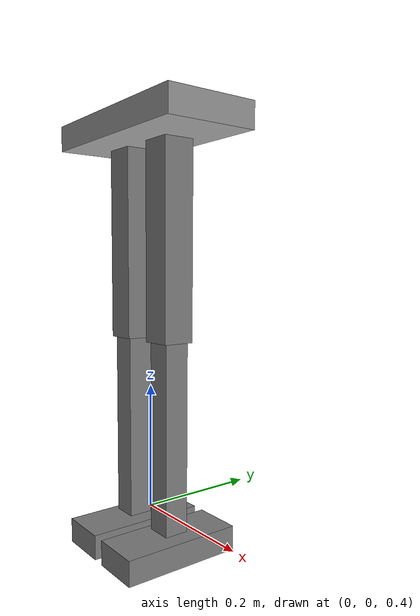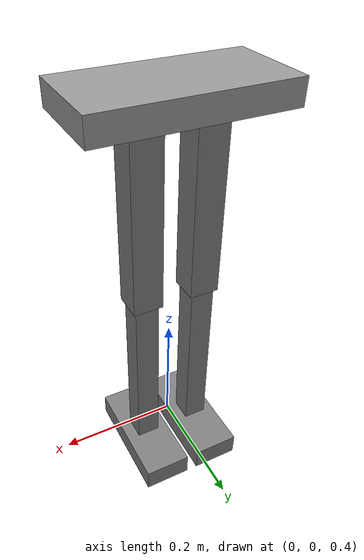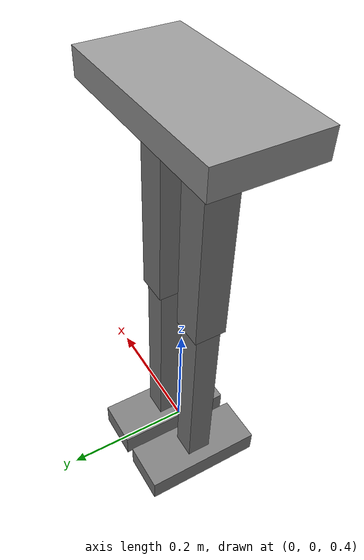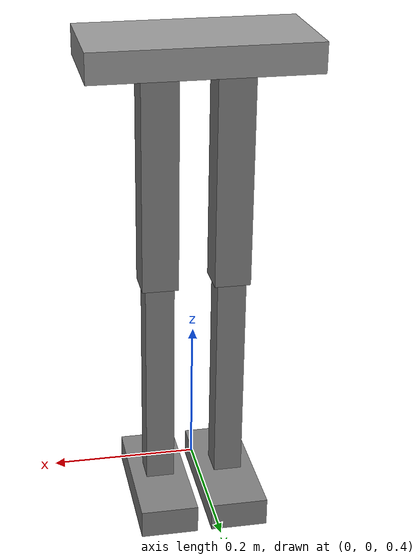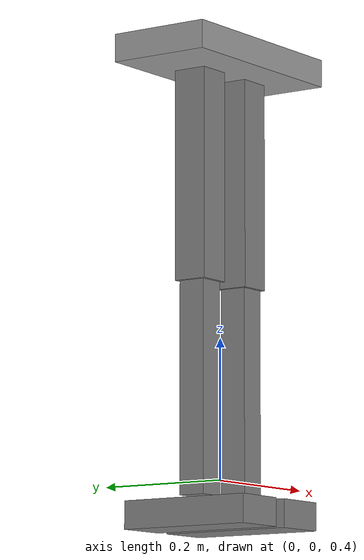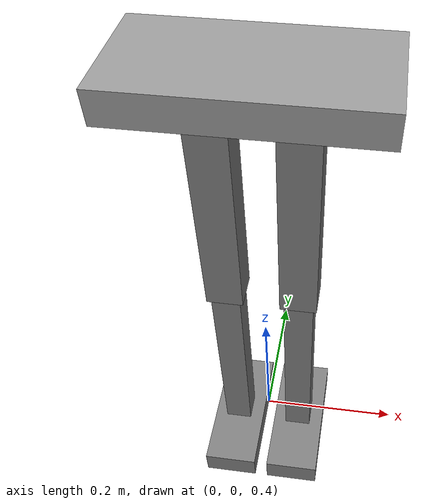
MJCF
This XML file does not appear to have any style information associated with it. The document tree is shown below.
<mujoco model="simple_biped">
<compiler angle="radian" coordinate="local"/>
<option timestep="0.002"/>
<default>
<joint limited="true" damping="1"/>
<geom friction="1 0.5 0.5" density="1000" contype="1" conaffinity="1"/>
</default>
<worldbody>
<!--  Pelvis  -->
<body name="pelvis" pos="0 0 1.0">
<geom name="pelvis_geom" type="box" size="0.15 0.075 0.02" rgba="0.6 0.6 0.6 1"/>
<!--  Left Thigh  -->
<body name="left_thigh" pos="0.05 0 -0.025">
<joint name="left_hip" type="hinge" axis="1 0 0" range="-1.57 1.57"/>
<geom type="box" size="0.025 0.025 0.15" pos="0 0 -0.15"/>
<!--  Left Shin  -->
<body name="left_shin" pos="0 0 -0.3">
<joint name="left_knee" type="hinge" axis="1 0 0" range="-1.57 0"/>
<geom type="box" size="0.02 0.02 0.15" pos="0 0 -0.15"/>
<!--  Left Foot  -->
<body name="left_foot" pos="0 0 -0.3">
<joint name="left_ankle" type="hinge" axis="1 0 0" range="-0.5 0.5"/>
<geom type="box" size="0.04 0.1 0.02" pos="0 0 -0.025"/>
</body>
</body>
</body>
<!--  Right Thigh  -->
<body name="right_thigh" pos="-0.05 0 -0.025">
<joint name="right_hip" type="hinge" axis="1 0 0" range="-1.57 1.57"/>
<geom type="box" size="0.025 0.025 0.15" pos="0 0 -0.15"/>
<!--  Right Shin  -->
<body name="right_shin" pos="0 0 -0.3">
<joint name="right_knee" type="hinge" axis="1 0 0" range="-1.57 0"/>
<geom type="box" size="0.02 0.02 0.15" pos="0 0 -0.15"/>
<!--  Right Foot  -->
<body name="right_foot" pos="0 0 -0.3">
<joint name="right_ankle" type="hinge" axis="1 0 0" range="-0.5 0.5"/>
<geom type="box" size="0.04 0.1 0.02" pos="0 0 -0.025"/>
</body>
</body>
</body>
</body>
</worldbody>
<actuator>
<motor joint="left_hip" ctrlrange="-1 1"/>
<motor joint="left_knee" ctrlrange="-1 1"/>
<motor joint="left_ankle" ctrlrange="-1 1"/>
<motor joint="right_hip" ctrlrange="-1 1"/>
<motor joint="right_knee" ctrlrange="-1 1"/>
<motor joint="right_ankle" ctrlrange="-1 1"/>
</actuator>
</mujoco>
